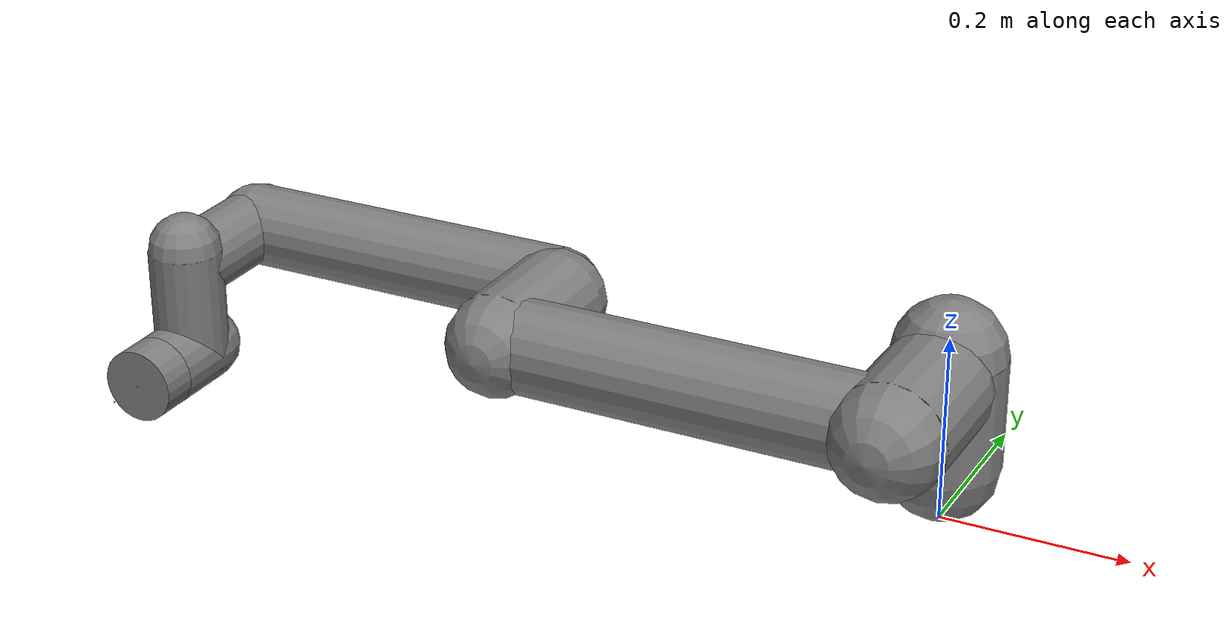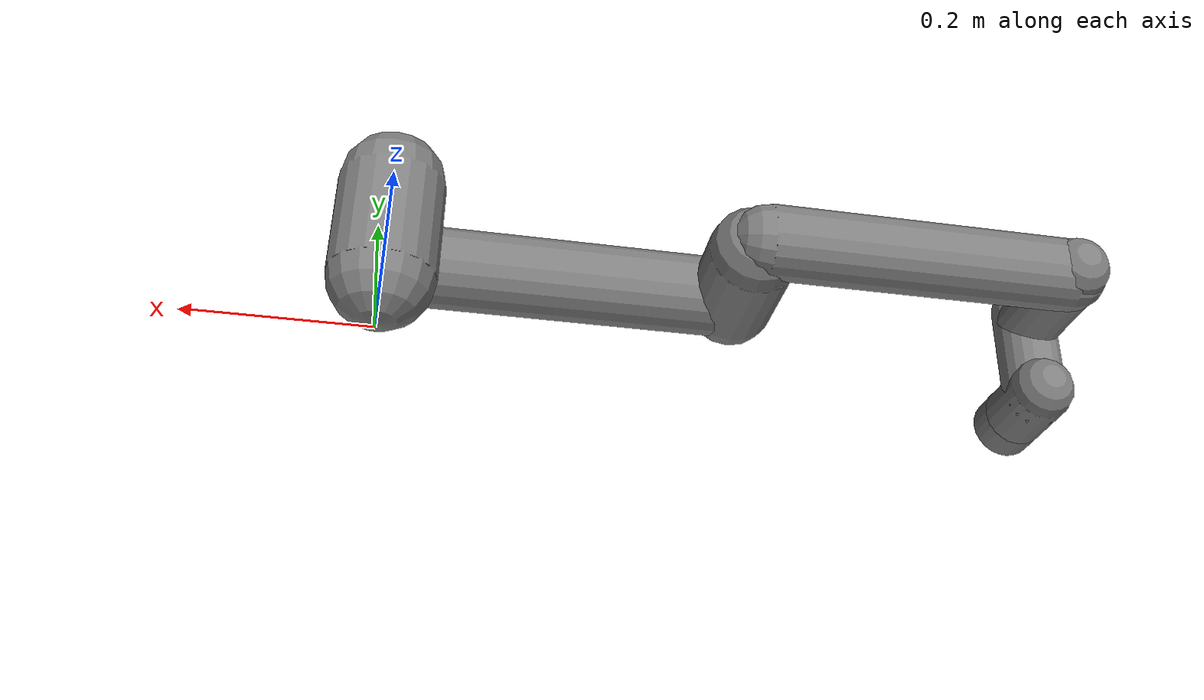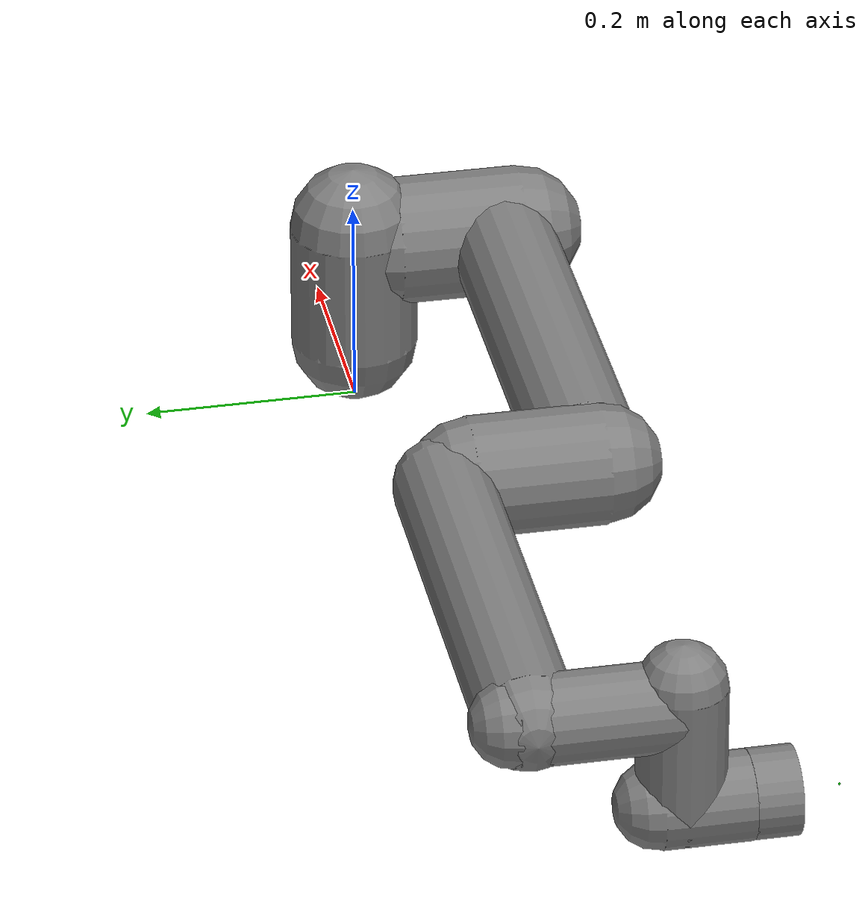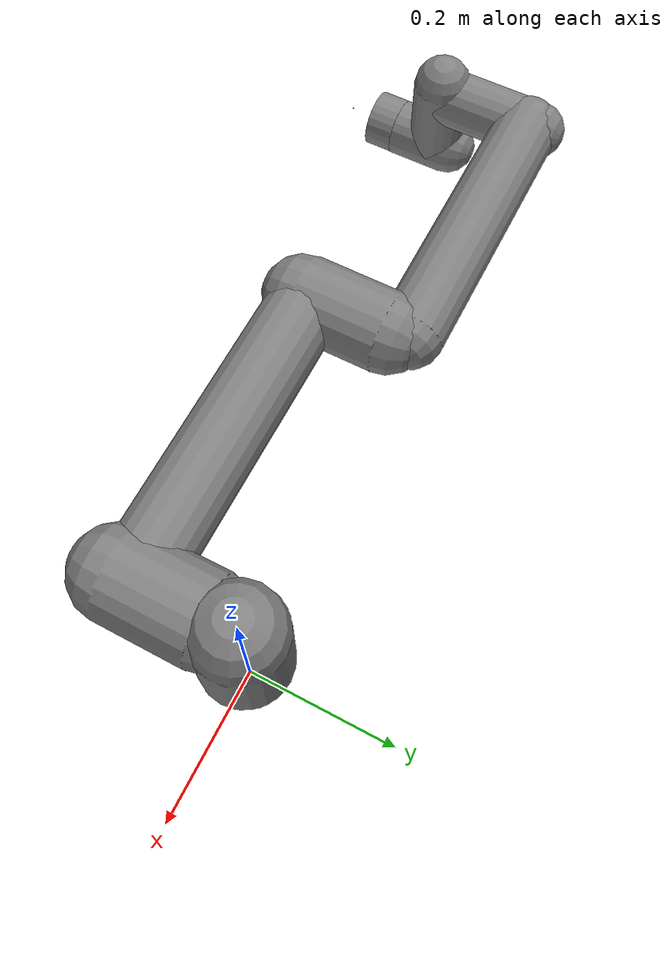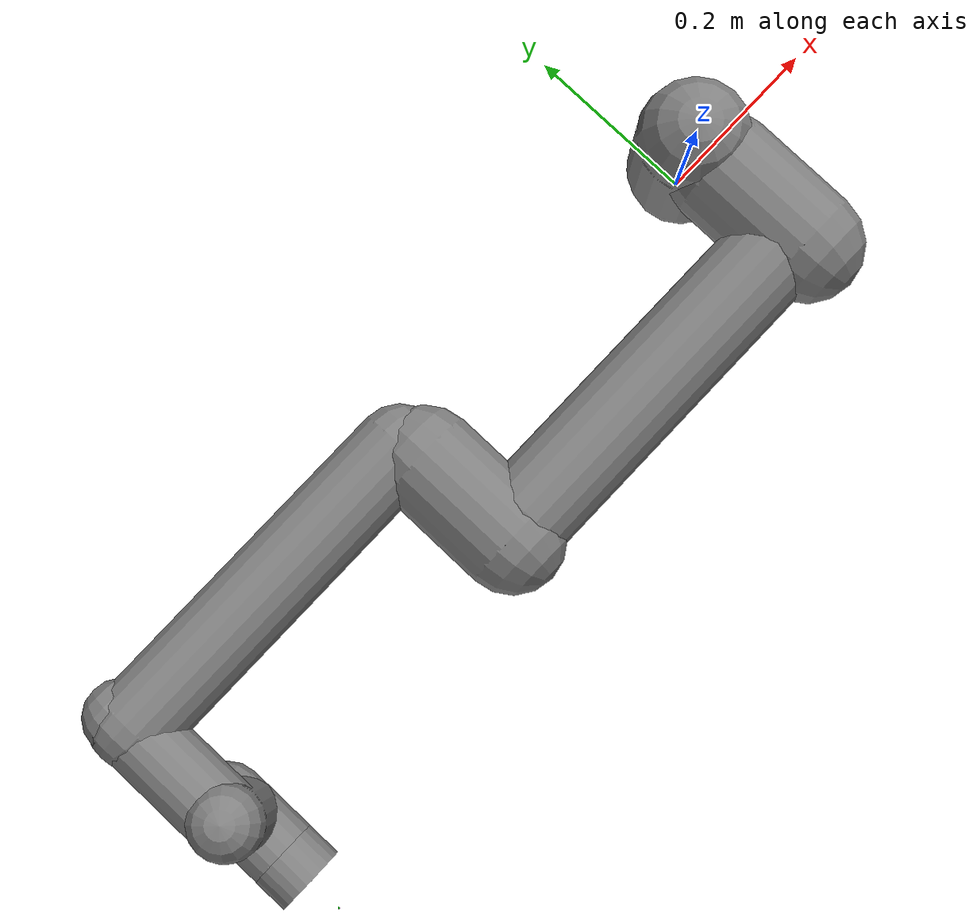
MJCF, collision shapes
<mujoco model="ur5e">
  <compiler angle="radian" eulerseq="XYZ" meshdir="assets" autolimits="true"/>

  <option integrator="implicitfast" cone="elliptic" solver="Newton" timestep="0.001" />

  <default>
    <default class="ur5e">
      <material specular="0.5" shininess="0.25"/>
      <joint axis="0 1 0" range="-6.28319 6.28319" armature="0.1"/>
      <general gaintype="fixed" biastype="affine" ctrlrange="-6.2831 6.2831" gainprm="2000" biasprm="0 -2000 -400"
        forcerange="-150 150"/>
      <default class="size3">
        <default class="size3_limited">
          <joint range="-3.1415 3.1415"/>
          <general ctrlrange="-3.1415 3.1415"/>
        </default>
      </default>
      <default class="size1">
        <general gainprm="500" biasprm="0 -500 -100" forcerange="-58 58"/>
      </default>
      <default class="visual">
        <geom type="mesh" contype="0" conaffinity="0" group="2"/>
      </default>
      <default class="collision">
        <geom type="capsule" group="3"/>
        <default class="eef_collision">
          <geom type="cylinder"/>
        </default>
      </default>
      <site size="0.001" rgba="0.5 0.5 0.5 0.3" group="4"/>
    </default>
  </default>

  <asset>
    <material class="ur5e" name="black" rgba="0.033 0.033 0.033 1"/>
    <material class="ur5e" name="jointgray" rgba="0.278 0.278 0.278 1"/>
    <material class="ur5e" name="linkgray" rgba="0.82 0.82 0.82 1"/>
    <material class="ur5e" name="urblue" rgba="0.49 0.678 0.8 1"/>

    <mesh file="base_0.obj"/>
    <mesh file="base_1.obj"/>
    <mesh file="shoulder_0.obj"/>
    <mesh file="shoulder_1.obj"/>
    <mesh file="shoulder_2.obj"/>
    <mesh file="upperarm_0.obj"/>
    <mesh file="upperarm_1.obj"/>
    <mesh file="upperarm_2.obj"/>
    <mesh file="upperarm_3.obj"/>
    <mesh file="forearm_0.obj"/>
    <mesh file="forearm_1.obj"/>
    <mesh file="forearm_2.obj"/>
    <mesh file="forearm_3.obj"/>
    <mesh file="wrist1_0.obj"/>
    <mesh file="wrist1_1.obj"/>
    <mesh file="wrist1_2.obj"/>
    <mesh file="wrist2_0.obj"/>
    <mesh file="wrist2_1.obj"/>
    <mesh file="wrist2_2.obj"/>
    <mesh file="wrist3.obj"/>

    <!-- FTS -->
    <mesh file="fts_robot_adapter.obj" scale="0.001 0.001 0.001"/>
    <mesh file="fts_axia80.obj" scale="0.001 0.001 0.001"/>
    <mesh file="fts_tool_adapter.obj" scale="0.001 0.001 0.001"/>
  </asset>

  <worldbody>
    <light name="spotlight" mode="targetbodycom" target="wrist_2_link" pos="0 -1 2"/>
    <body name="base" quat="0 0 0 -1" childclass="ur5e">
      <inertial mass="4.0" pos="0 0 0" diaginertia="0.00443333156 0.00443333156 0.0072"/>
      <geom mesh="base_0" material="black" class="visual"/>
      <geom mesh="base_1" material="jointgray" class="visual"/>
      <!-- Shoulder_link joint with calibrated kinematics -->
      <body name="shoulder_link" pos="0 0 0.1627597965710741" euler="0 0 -6.009209651026969e-07">
        <inertial mass="3.7" pos="0 0 0" diaginertia="0.0102675 0.0102675 0.00666"/>
        <joint name="shoulder_pan_joint" class="size3" axis="0 0 1"/>
        <geom mesh="shoulder_0" material="urblue" class="visual"/>
        <geom mesh="shoulder_1" material="black" class="visual"/>
        <geom mesh="shoulder_2" material="jointgray" class="visual"/>
        <geom class="collision" size="0.06 0.06" pos="0 0 -0.04"/>
        <!-- Joint with calibrated kinematics -->
        <body name="upper_arm_link" pos="0.0001996253312216193 0.138 0" quat="1 0 1 0">
          <inertial mass="8.393" pos="0 0 0.2125" diaginertia="0.133886 0.133886 0.0151074"/>
          <joint name="shoulder_lift_joint" class="size3"/>
          <geom mesh="upperarm_0" material="linkgray" class="visual"/>
          <geom mesh="upperarm_1" material="black" class="visual"/>
          <geom mesh="upperarm_2" material="jointgray" class="visual"/>
          <geom mesh="upperarm_3" material="urblue" class="visual"/>
          <geom class="collision" pos="0 -0.04 0" quat="1 1 0 0" size="0.06 0.06"/>
          <geom class="collision" size="0.05 0.2" pos="0 0 0.2"/>
          <!-- Joint with calibrated kinematics -->
          <body name="forearm_link" pos="0 -0.138 0.42539624524237">
            <inertial mass="2.275" pos="0 0 0.196" diaginertia="0.0311796 0.0311796 0.004095"/>
            <joint name="elbow_joint" class="size3_limited"/>
            <geom mesh="forearm_0" pos="0 0.007 0" material="urblue" class="visual"/>
            <geom mesh="forearm_1" pos="0 0.007 0" material="linkgray" class="visual"/>
            <geom mesh="forearm_2" pos="0 0.007 0" material="black" class="visual"/>
            <geom mesh="forearm_3" pos="0 0.007 0" material="jointgray" class="visual"/>
            <geom class="collision" pos="0 0.087 0" quat="1 1 0 0" size="0.055 0.06"/>
            <geom class="collision" size="0.045 0.19" pos="0 0 0.2"/>
            <!-- Joint with calibrated kinematics -->
            <body name="wrist_1_link" pos="0 0 0.3928622448950321" quat="1 0 1 0">
              <inertial mass="1.219" pos="0 0.127 0" diaginertia="0.0025599 0.0025599 0.0021942"/>
              <joint name="wrist_1_joint" class="size1"/>
              <geom mesh="wrist1_0" pos="0 0.007 0" material="black" class="visual"/>
              <geom mesh="wrist1_1" pos="0 0.007 0" material="urblue" class="visual"/>
              <geom mesh="wrist1_2" pos="0 0.007 0" material="jointgray" class="visual"/>
              <geom class="collision" pos="0 0.057 0" quat="1 1 0 0" size="0.04 0.07"/>
              <!-- Joint with calibrated kinematics -->
              <body name="wrist_2_link" pos="0 0.1330314425708571 0">
                <inertial mass="1.219" pos="0 0 0.1" diaginertia="0.0025599 0.0025599 0.0021942"/>
                <joint name="wrist_2_joint" axis="0 0 1" class="size1"/>
                <geom mesh="wrist2_0" material="black" class="visual"/>
                <geom mesh="wrist2_1" material="urblue" class="visual"/>
                <geom mesh="wrist2_2" material="jointgray" class="visual"/>
                <geom class="collision" size="0.04 0.06" pos="0 0 0.04"/>
                <geom class="collision" pos="0 0.02 0.1" quat="1 1 0 0" size="0.04 0.04"/>
                <!-- Joint with calibrated kinematics -->
                <body name="wrist_3_link" pos="0 0 0.09977211124305385">
                  <inertial mass="0.1889" pos="0 0.0771683 0" quat="1 0 0 1"
                    diaginertia="0.000132134 9.90863e-05 9.90863e-05"/>
                  <joint name="wrist_3_joint" class="size1"/>
                  <geom material="linkgray" mesh="wrist3" class="visual"/>
                  <geom class="eef_collision" pos="0 0.08 0" quat="1 1 0 0" size="0.04 0.02"/>
                  <site name="attachment_site" pos="0 0.1 0" quat="-1 1 0 0"/>
                  <!-- FTS sensor and adapters -->
                  <body name="tool0" pos="0 0.1 0.0" quat="-1 1 0 0">
                    <site name="tool0_debug_site" pos="0 0 0" group="1"/>
                    <site name="fts_site" size="0.001 0.001 0.001" pos="0 0 0.04" quat="1 0 0 0" rgba="0 1 0 1" group="2"/>
                    <geom material="linkgray" mass="0.00001" class="visual" mesh='fts_robot_adapter' pos="0.0 0.0 0.014" quat="0 0 -0.7071068 0.7071068"/>
                    <geom material="linkgray" mass="0.00001" class="visual" mesh='fts_axia80' pos="0.0 0.0 0.035" quat="0 0 -0.7071068 0.7071068"/>
                    <geom material="linkgray" mass="0.00001" class="visual" mesh='fts_tool_adapter' pos="0.0 0.0 0.035" quat="0 -0.7071068 0 0.7071068"/>
                  </body>
                </body>
              </body>
            </body>
          </body>
        </body>
      </body>
    </body>
  </worldbody>

  <actuator>
    <general class="size3" name="shoulder_pan" joint="shoulder_pan_joint"/>
    <general class="size3" name="shoulder_lift" joint="shoulder_lift_joint"/>
    <general class="size3_limited" name="elbow" joint="elbow_joint"/>
    <general class="size1" name="wrist_1" joint="wrist_1_joint"/>
    <general class="size1" name="wrist_2" joint="wrist_2_joint"/>
    <general class="size1" name="wrist_3" joint="wrist_3_joint"/>
  </actuator>

  <!-- TODO: This excluding doesn't work!!!  using visual class for quick fix -->
  <contact>
    <exclude name="flange_fts" body1='wrist_3_link' body2='tool0'/>
  </contact>

  <sensor>
    <force name="force_sensor" site="fts_site" />
		<torque name="torque_sensor" site="fts_site" />
  </sensor>

</mujoco>
